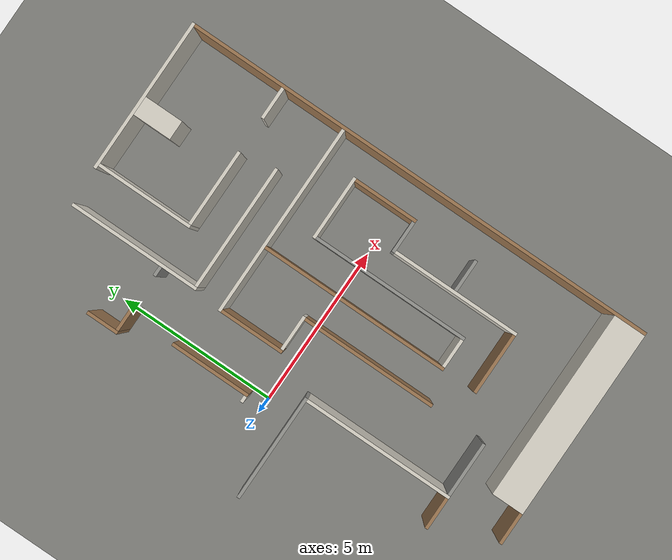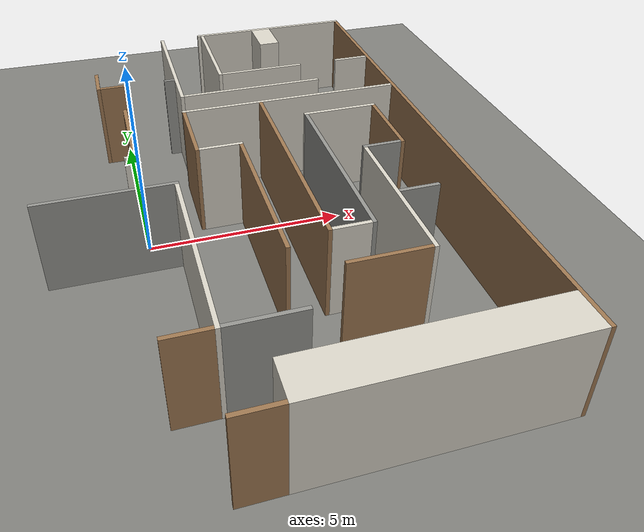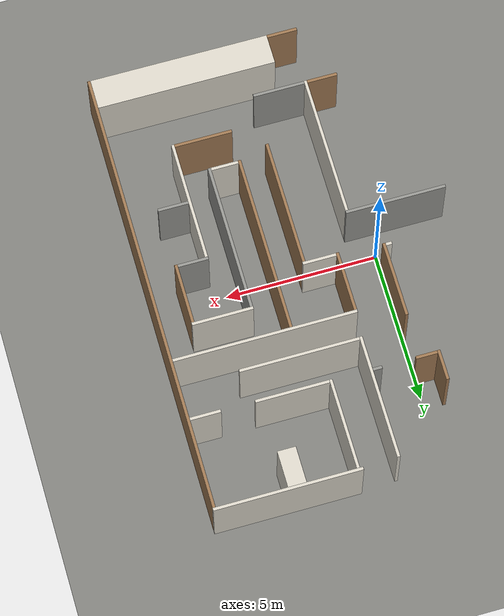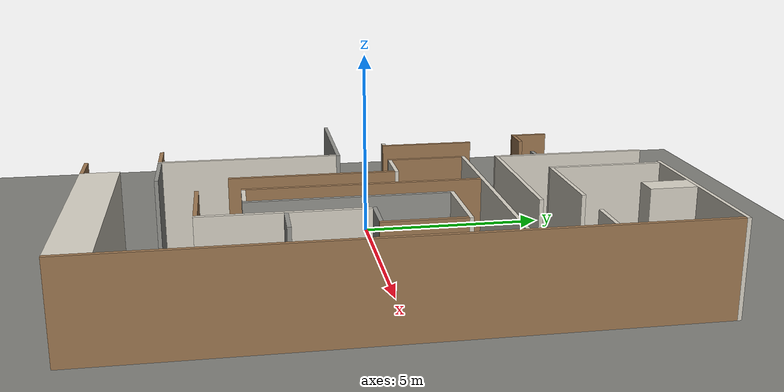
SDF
<sdf version="1.9">
 <world name="arena_world">
  <model name="ground_plane">
   <static>true</static>
   <link name="link">
    <collision name="collision">
     <geometry><plane><normal>0 0 1</normal><size>15.00 15.00</size></plane></geometry>
     <surface>
      <friction><ode><mu>0.8</mu><mu2>0.8</mu2></ode></friction>
      <contact><ode><kp>1e9</kp><kd>1.0</kd></ode></contact>
     </surface>
    </collision>
    <visual name="visual">
     <geometry><plane><normal>0 0 1</normal><size>15.00 15.00</size></plane></geometry>
     <material>
      <ambient>0.45 0.45 0.44 1</ambient>
      <diffuse>0.5 0.5 0.48 1</diffuse>
      <specular>0.15 0.15 0.15 1</specular>
      <pbr><metal><roughness>0.95</roughness><metalness>0.0</metalness></metal></pbr>
     </material>
    </visual>
   </link>
  </model>
  <model name="wall_001">
   <static>true</static>
   <pose>5.1000 7.4500 1.2200 0 0 0</pose>
   <link name="link">
    <collision name="collision">
     <geometry><box><size>4.8000 0.1000 2.4400</size></box></geometry>
     <surface>
      <friction><ode><mu>0.7</mu><mu2>0.7</mu2></ode></friction>
      <contact><ode><kp>1e9</kp><kd>1.0</kd><max_vel>0.1</max_vel><min_depth>0.001</min_depth></ode></contact>
      <bounce><restitution_coefficient>0.0</restitution_coefficient><threshold>1e6</threshold></bounce>
     </surface>
    </collision>
    <visual name="visual">
     <geometry><box><size>4.8000 0.1000 2.4400</size></box></geometry>
     <material>
      <ambient>0.82 0.80 0.75 1</ambient>
      <diffuse>0.85 0.83 0.78 1</diffuse>
      <specular>0.05 0.05 0.05 1</specular>
      <pbr><metal><roughness>0.85</roughness><metalness>0.0</metalness></metal></pbr>
     </material>
    </visual>
   </link>
  </model>
  <model name="wall_005">
   <static>true</static>
   <pose>1.5500 5.3500 1.2200 0 0 0</pose>
   <link name="link">
    <collision name="collision">
     <geometry><box><size>0.1000 4.1000 2.4400</size></box></geometry>
     <surface>
      <friction><ode><mu>0.7</mu><mu2>0.7</mu2></ode></friction>
      <contact><ode><kp>1e9</kp><kd>1.0</kd><max_vel>0.1</max_vel><min_depth>0.001</min_depth></ode></contact>
      <bounce><restitution_coefficient>0.0</restitution_coefficient><threshold>1e6</threshold></bounce>
     </surface>
    </collision>
    <visual name="visual">
     <geometry><box><size>0.1000 4.1000 2.4400</size></box></geometry>
     <material>
      <ambient>0.82 0.80 0.75 1</ambient>
      <diffuse>0.85 0.83 0.78 1</diffuse>
      <specular>0.05 0.05 0.05 1</specular>
      <pbr><metal><roughness>0.85</roughness><metalness>0.0</metalness></metal></pbr>
     </material>
    </visual>
   </link>
  </model>
  <model name="wall_006">
   <static>true</static>
   <pose>2.8500 5.9000 1.2200 0 0 0</pose>
   <link name="link">
    <collision name="collision">
     <geometry><box><size>0.1000 3.0000 2.4400</size></box></geometry>
     <surface>
      <friction><ode><mu>0.7</mu><mu2>0.7</mu2></ode></friction>
      <contact><ode><kp>1e9</kp><kd>1.0</kd><max_vel>0.1</max_vel><min_depth>0.001</min_depth></ode></contact>
      <bounce><restitution_coefficient>0.0</restitution_coefficient><threshold>1e6</threshold></bounce>
     </surface>
    </collision>
    <visual name="visual">
     <geometry><box><size>0.1000 3.0000 2.4400</size></box></geometry>
     <material>
      <ambient>0.82 0.80 0.75 1</ambient>
      <diffuse>0.85 0.83 0.78 1</diffuse>
      <specular>0.05 0.05 0.05 1</specular>
      <pbr><metal><roughness>0.85</roughness><metalness>0.0</metalness></metal></pbr>
     </material>
    </visual>
   </link>
  </model>
  <model name="wall_007">
   <static>true</static>
   <pose>4.8000 6.8000 1.2200 0 0 0</pose>
   <link name="link">
    <collision name="collision">
     <geometry><box><size>0.6000 1.2000 2.4400</size></box></geometry>
     <surface>
      <friction><ode><mu>0.7</mu><mu2>0.7</mu2></ode></friction>
      <contact><ode><kp>1e9</kp><kd>1.0</kd><max_vel>0.1</max_vel><min_depth>0.001</min_depth></ode></contact>
      <bounce><restitution_coefficient>0.0</restitution_coefficient><threshold>1e6</threshold></bounce>
     </surface>
    </collision>
    <visual name="visual">
     <geometry><box><size>0.6000 1.2000 2.4400</size></box></geometry>
     <material>
      <ambient>0.82 0.80 0.75 1</ambient>
      <diffuse>0.85 0.83 0.78 1</diffuse>
      <specular>0.05 0.05 0.05 1</specular>
      <pbr><metal><roughness>0.85</roughness><metalness>0.0</metalness></metal></pbr>
     </material>
    </visual>
   </link>
  </model>
  <model name="wall_008">
   <static>true</static>
   <pose>7.4500 -0.0500 1.2200 0 0 0</pose>
   <link name="link">
    <collision name="collision">
     <geometry><box><size>0.1000 14.9000 2.4400</size></box></geometry>
     <surface>
      <friction><ode><mu>0.7</mu><mu2>0.7</mu2></ode></friction>
      <contact><ode><kp>1e9</kp><kd>1.0</kd><max_vel>0.1</max_vel><min_depth>0.001</min_depth></ode></contact>
      <bounce><restitution_coefficient>0.0</restitution_coefficient><threshold>1e6</threshold></bounce>
     </surface>
    </collision>
    <visual name="visual">
     <geometry><box><size>0.1000 14.9000 2.4400</size></box></geometry>
     <material>
      <ambient>0.55 0.42 0.28 1</ambient>
      <diffuse>0.62 0.47 0.32 1</diffuse>
      <specular>0.06 0.06 0.06 1</specular>
      <pbr><metal><roughness>0.7</roughness><metalness>0.0</metalness></metal></pbr>
     </material>
    </visual>
   </link>
  </model>
  <model name="wall_012">
   <static>true</static>
   <pose>-0.6500 4.9000 1.2200 0 0 0</pose>
   <link name="link">
    <collision name="collision">
     <geometry><box><size>0.1000 1.0000 2.4400</size></box></geometry>
     <surface>
      <friction><ode><mu>0.7</mu><mu2>0.7</mu2></ode></friction>
      <contact><ode><kp>1e9</kp><kd>1.0</kd><max_vel>0.1</max_vel><min_depth>0.001</min_depth></ode></contact>
      <bounce><restitution_coefficient>0.0</restitution_coefficient><threshold>1e6</threshold></bounce>
     </surface>
    </collision>
    <visual name="visual">
     <geometry><box><size>0.1000 1.0000 2.4400</size></box></geometry>
     <material>
      <ambient>0.55 0.42 0.28 1</ambient>
      <diffuse>0.62 0.47 0.32 1</diffuse>
      <specular>0.06 0.06 0.06 1</specular>
      <pbr><metal><roughness>0.7</roughness><metalness>0.0</metalness></metal></pbr>
     </material>
    </visual>
   </link>
  </model>
  <model name="wall_014">
   <static>true</static>
   <pose>-0.2500 4.4500 1.2200 0 0 0</pose>
   <link name="link">
    <collision name="collision">
     <geometry><box><size>0.7000 0.1000 2.4400</size></box></geometry>
     <surface>
      <friction><ode><mu>0.7</mu><mu2>0.7</mu2></ode></friction>
      <contact><ode><kp>1e9</kp><kd>1.0</kd><max_vel>0.1</max_vel><min_depth>0.001</min_depth></ode></contact>
      <bounce><restitution_coefficient>0.0</restitution_coefficient><threshold>1e6</threshold></bounce>
     </surface>
    </collision>
    <visual name="visual">
     <geometry><box><size>0.7000 0.1000 2.4400</size></box></geometry>
     <material>
      <ambient>0.55 0.42 0.28 1</ambient>
      <diffuse>0.62 0.47 0.32 1</diffuse>
      <specular>0.06 0.06 0.06 1</specular>
      <pbr><metal><roughness>0.7</roughness><metalness>0.0</metalness></metal></pbr>
     </material>
    </visual>
   </link>
  </model>
  <model name="wall_015">
   <static>true</static>
   <pose>1.3500 4.4500 1.2200 0 0 0</pose>
   <link name="link">
    <collision name="collision">
     <geometry><box><size>0.3000 0.1000 2.4400</size></box></geometry>
     <surface>
      <friction><ode><mu>0.7</mu><mu2>0.7</mu2></ode></friction>
      <contact><ode><kp>1e9</kp><kd>1.0</kd><max_vel>0.1</max_vel><min_depth>0.001</min_depth></ode></contact>
      <bounce><restitution_coefficient>0.0</restitution_coefficient><threshold>1e6</threshold></bounce>
     </surface>
    </collision>
    <visual name="visual">
     <geometry><box><size>0.3000 0.1000 2.4400</size></box></geometry>
     <material>
      <ambient>0.55 0.55 0.53 1</ambient>
      <diffuse>0.58 0.58 0.56 1</diffuse>
      <specular>0.08 0.08 0.08 1</specular>
      <pbr><metal><roughness>0.9</roughness><metalness>0.0</metalness></metal></pbr>
     </material>
    </visual>
   </link>
  </model>
  <model name="wall_016">
   <static>true</static>
   <pose>4.1000 4.4500 1.2200 0 0 0</pose>
   <link name="link">
    <collision name="collision">
     <geometry><box><size>2.4000 0.1000 2.4400</size></box></geometry>
     <surface>
      <friction><ode><mu>0.7</mu><mu2>0.7</mu2></ode></friction>
      <contact><ode><kp>1e9</kp><kd>1.0</kd><max_vel>0.1</max_vel><min_depth>0.001</min_depth></ode></contact>
      <bounce><restitution_coefficient>0.0</restitution_coefficient><threshold>1e6</threshold></bounce>
     </surface>
    </collision>
    <visual name="visual">
     <geometry><box><size>2.4000 0.1000 2.4400</size></box></geometry>
     <material>
      <ambient>0.82 0.80 0.75 1</ambient>
      <diffuse>0.85 0.83 0.78 1</diffuse>
      <specular>0.05 0.05 0.05 1</specular>
      <pbr><metal><roughness>0.85</roughness><metalness>0.0</metalness></metal></pbr>
     </material>
    </visual>
   </link>
  </model>
  <model name="wall_017">
   <static>true</static>
   <pose>6.9000 4.4500 1.2200 0 0 0</pose>
   <link name="link">
    <collision name="collision">
     <geometry><box><size>1.0000 0.1000 2.4400</size></box></geometry>
     <surface>
      <friction><ode><mu>0.7</mu><mu2>0.7</mu2></ode></friction>
      <contact><ode><kp>1e9</kp><kd>1.0</kd><max_vel>0.1</max_vel><min_depth>0.001</min_depth></ode></contact>
      <bounce><restitution_coefficient>0.0</restitution_coefficient><threshold>1e6</threshold></bounce>
     </surface>
    </collision>
    <visual name="visual">
     <geometry><box><size>1.0000 0.1000 2.4400</size></box></geometry>
     <material>
      <ambient>0.82 0.80 0.75 1</ambient>
      <diffuse>0.85 0.83 0.78 1</diffuse>
      <specular>0.05 0.05 0.05 1</specular>
      <pbr><metal><roughness>0.85</roughness><metalness>0.0</metalness></metal></pbr>
     </material>
    </visual>
   </link>
  </model>
  <model name="wall_019">
   <static>true</static>
   <pose>3.5500 3.3500 1.2200 0 0 0</pose>
   <link name="link">
    <collision name="collision">
     <geometry><box><size>3.9000 0.1000 2.4400</size></box></geometry>
     <surface>
      <friction><ode><mu>0.7</mu><mu2>0.7</mu2></ode></friction>
      <contact><ode><kp>1e9</kp><kd>1.0</kd><max_vel>0.1</max_vel><min_depth>0.001</min_depth></ode></contact>
      <bounce><restitution_coefficient>0.0</restitution_coefficient><threshold>1e6</threshold></bounce>
     </surface>
    </collision>
    <visual name="visual">
     <geometry><box><size>3.9000 0.1000 2.4400</size></box></geometry>
     <material>
      <ambient>0.82 0.80 0.75 1</ambient>
      <diffuse>0.85 0.83 0.78 1</diffuse>
      <specular>0.05 0.05 0.05 1</specular>
      <pbr><metal><roughness>0.85</roughness><metalness>0.0</metalness></metal></pbr>
     </material>
    </visual>
   </link>
  </model>
  <model name="wall_022">
   <static>true</static>
   <pose>-0.0500 1.7500 1.2200 0 0 0</pose>
   <link name="link">
    <collision name="collision">
     <geometry><box><size>0.1000 2.5000 2.4400</size></box></geometry>
     <surface>
      <friction><ode><mu>0.7</mu><mu2>0.7</mu2></ode></friction>
      <contact><ode><kp>1e9</kp><kd>1.0</kd><max_vel>0.1</max_vel><min_depth>0.001</min_depth></ode></contact>
      <bounce><restitution_coefficient>0.0</restitution_coefficient><threshold>1e6</threshold></bounce>
     </surface>
    </collision>
    <visual name="visual">
     <geometry><box><size>0.1000 2.5000 2.4400</size></box></geometry>
     <material>
      <ambient>0.55 0.42 0.28 1</ambient>
      <diffuse>0.62 0.47 0.32 1</diffuse>
      <specular>0.06 0.06 0.06 1</specular>
      <pbr><metal><roughness>0.7</roughness><metalness>0.0</metalness></metal></pbr>
     </material>
    </visual>
   </link>
  </model>
  <model name="wall_023">
   <static>true</static>
   <pose>4.4000 2.4500 1.2200 0 0 0</pose>
   <link name="link">
    <collision name="collision">
     <geometry><box><size>6.0000 0.1000 2.4400</size></box></geometry>
     <surface>
      <friction><ode><mu>0.7</mu><mu2>0.7</mu2></ode></friction>
      <contact><ode><kp>1e9</kp><kd>1.0</kd><max_vel>0.1</max_vel><min_depth>0.001</min_depth></ode></contact>
      <bounce><restitution_coefficient>0.0</restitution_coefficient><threshold>1e6</threshold></bounce>
     </surface>
    </collision>
    <visual name="visual">
     <geometry><box><size>6.0000 0.1000 2.4400</size></box></geometry>
     <material>
      <ambient>0.82 0.80 0.75 1</ambient>
      <diffuse>0.85 0.83 0.78 1</diffuse>
      <specular>0.05 0.05 0.05 1</specular>
      <pbr><metal><roughness>0.85</roughness><metalness>0.0</metalness></metal></pbr>
     </material>
    </visual>
   </link>
  </model>
  <model name="wall_026">
   <static>true</static>
   <pose>1.4500 1.4000 1.2200 0 0 0</pose>
   <link name="link">
    <collision name="collision">
     <geometry><box><size>0.1000 2.0000 2.4400</size></box></geometry>
     <surface>
      <friction><ode><mu>0.7</mu><mu2>0.7</mu2></ode></friction>
      <contact><ode><kp>1e9</kp><kd>1.0</kd><max_vel>0.1</max_vel><min_depth>0.001</min_depth></ode></contact>
      <bounce><restitution_coefficient>0.0</restitution_coefficient><threshold>1e6</threshold></bounce>
     </surface>
    </collision>
    <visual name="visual">
     <geometry><box><size>0.1000 2.0000 2.4400</size></box></geometry>
     <material>
      <ambient>0.55 0.42 0.28 1</ambient>
      <diffuse>0.62 0.47 0.32 1</diffuse>
      <specular>0.06 0.06 0.06 1</specular>
      <pbr><metal><roughness>0.7</roughness><metalness>0.0</metalness></metal></pbr>
     </material>
    </visual>
   </link>
  </model>
  <model name="wall_027">
   <static>true</static>
   <pose>3.5500 -0.5500 1.2200 0 0 0</pose>
   <link name="link">
    <collision name="collision">
     <geometry><box><size>0.1000 5.9000 2.4400</size></box></geometry>
     <surface>
      <friction><ode><mu>0.7</mu><mu2>0.7</mu2></ode></friction>
      <contact><ode><kp>1e9</kp><kd>1.0</kd><max_vel>0.1</max_vel><min_depth>0.001</min_depth></ode></contact>
      <bounce><restitution_coefficient>0.0</restitution_coefficient><threshold>1e6</threshold></bounce>
     </surface>
    </collision>
    <visual name="visual">
     <geometry><box><size>0.1000 5.9000 2.4400</size></box></geometry>
     <material>
      <ambient>0.55 0.42 0.28 1</ambient>
      <diffuse>0.62 0.47 0.32 1</diffuse>
      <specular>0.06 0.06 0.06 1</specular>
      <pbr><metal><roughness>0.7</roughness><metalness>0.0</metalness></metal></pbr>
     </material>
    </visual>
   </link>
  </model>
  <model name="wall_031">
   <static>true</static>
   <pose>5.5000 1.4500 1.2200 0 0 0</pose>
   <link name="link">
    <collision name="collision">
     <geometry><box><size>2.0000 0.1000 2.4400</size></box></geometry>
     <surface>
      <friction><ode><mu>0.7</mu><mu2>0.7</mu2></ode></friction>
      <contact><ode><kp>1e9</kp><kd>1.0</kd><max_vel>0.1</max_vel><min_depth>0.001</min_depth></ode></contact>
      <bounce><restitution_coefficient>0.0</restitution_coefficient><threshold>1e6</threshold></bounce>
     </surface>
    </collision>
    <visual name="visual">
     <geometry><box><size>2.0000 0.1000 2.4400</size></box></geometry>
     <material>
      <ambient>0.82 0.80 0.75 1</ambient>
      <diffuse>0.85 0.83 0.78 1</diffuse>
      <specular>0.05 0.05 0.05 1</specular>
      <pbr><metal><roughness>0.85</roughness><metalness>0.0</metalness></metal></pbr>
     </material>
    </visual>
   </link>
  </model>
  <model name="wall_032">
   <static>true</static>
   <pose>4.5500 -1.0500 1.2200 0 0 0</pose>
   <link name="link">
    <collision name="collision">
     <geometry><box><size>0.1000 4.9000 2.4400</size></box></geometry>
     <surface>
      <friction><ode><mu>0.7</mu><mu2>0.7</mu2></ode></friction>
      <contact><ode><kp>1e9</kp><kd>1.0</kd><max_vel>0.1</max_vel><min_depth>0.001</min_depth></ode></contact>
      <bounce><restitution_coefficient>0.0</restitution_coefficient><threshold>1e6</threshold></bounce>
     </surface>
    </collision>
    <visual name="visual">
     <geometry><box><size>0.1000 4.9000 2.4400</size></box></geometry>
     <material>
      <ambient>0.55 0.55 0.53 1</ambient>
      <diffuse>0.58 0.58 0.56 1</diffuse>
      <specular>0.08 0.08 0.08 1</specular>
      <pbr><metal><roughness>0.9</roughness><metalness>0.0</metalness></metal></pbr>
     </material>
    </visual>
   </link>
  </model>
  <model name="wall_033">
   <static>true</static>
   <pose>6.4500 0.4000 1.2200 0 0 0</pose>
   <link name="link">
    <collision name="collision">
     <geometry><box><size>0.1000 2.0000 2.4400</size></box></geometry>
     <surface>
      <friction><ode><mu>0.7</mu><mu2>0.7</mu2></ode></friction>
      <contact><ode><kp>1e9</kp><kd>1.0</kd><max_vel>0.1</max_vel><min_depth>0.001</min_depth></ode></contact>
      <bounce><restitution_coefficient>0.0</restitution_coefficient><threshold>1e6</threshold></bounce>
     </surface>
    </collision>
    <visual name="visual">
     <geometry><box><size>0.1000 2.0000 2.4400</size></box></geometry>
     <material>
      <ambient>0.55 0.42 0.28 1</ambient>
      <diffuse>0.62 0.47 0.32 1</diffuse>
      <specular>0.06 0.06 0.06 1</specular>
      <pbr><metal><roughness>0.7</roughness><metalness>0.0</metalness></metal></pbr>
     </material>
    </visual>
   </link>
  </model>
  <model name="wall_035">
   <static>true</static>
   <pose>-0.2000 0.5500 1.2200 0 0 0</pose>
   <link name="link">
    <collision name="collision">
     <geometry><box><size>0.2000 0.1000 2.4400</size></box></geometry>
     <surface>
      <friction><ode><mu>0.7</mu><mu2>0.7</mu2></ode></friction>
      <contact><ode><kp>1e9</kp><kd>1.0</kd><max_vel>0.1</max_vel><min_depth>0.001</min_depth></ode></contact>
      <bounce><restitution_coefficient>0.0</restitution_coefficient><threshold>1e6</threshold></bounce>
     </surface>
    </collision>
    <visual name="visual">
     <geometry><box><size>0.2000 0.1000 2.4400</size></box></geometry>
     <material>
      <ambient>0.82 0.80 0.75 1</ambient>
      <diffuse>0.85 0.83 0.78 1</diffuse>
      <specular>0.05 0.05 0.05 1</specular>
      <pbr><metal><roughness>0.85</roughness><metalness>0.0</metalness></metal></pbr>
     </material>
    </visual>
   </link>
  </model>
  <model name="wall_036">
   <static>true</static>
   <pose>2.0500 0.4500 1.2200 0 0 0</pose>
   <link name="link">
    <collision name="collision">
     <geometry><box><size>1.1000 0.1000 2.4400</size></box></geometry>
     <surface>
      <friction><ode><mu>0.7</mu><mu2>0.7</mu2></ode></friction>
      <contact><ode><kp>1e9</kp><kd>1.0</kd><max_vel>0.1</max_vel><min_depth>0.001</min_depth></ode></contact>
      <bounce><restitution_coefficient>0.0</restitution_coefficient><threshold>1e6</threshold></bounce>
     </surface>
    </collision>
    <visual name="visual">
     <geometry><box><size>1.1000 0.1000 2.4400</size></box></geometry>
     <material>
      <ambient>0.82 0.80 0.75 1</ambient>
      <diffuse>0.85 0.83 0.78 1</diffuse>
      <specular>0.05 0.05 0.05 1</specular>
      <pbr><metal><roughness>0.85</roughness><metalness>0.0</metalness></metal></pbr>
     </material>
    </visual>
   </link>
  </model>
  <model name="wall_037">
   <static>true</static>
   <pose>2.5500 -1.7000 1.2200 0 0 0</pose>
   <link name="link">
    <collision name="collision">
     <geometry><box><size>0.1000 4.2000 2.4400</size></box></geometry>
     <surface>
      <friction><ode><mu>0.7</mu><mu2>0.7</mu2></ode></friction>
      <contact><ode><kp>1e9</kp><kd>1.0</kd><max_vel>0.1</max_vel><min_depth>0.001</min_depth></ode></contact>
      <bounce><restitution_coefficient>0.0</restitution_coefficient><threshold>1e6</threshold></bounce>
     </surface>
    </collision>
    <visual name="visual">
     <geometry><box><size>0.1000 4.2000 2.4400</size></box></geometry>
     <material>
      <ambient>0.55 0.42 0.28 1</ambient>
      <diffuse>0.62 0.47 0.32 1</diffuse>
      <specular>0.06 0.06 0.06 1</specular>
      <pbr><metal><roughness>0.7</roughness><metalness>0.0</metalness></metal></pbr>
     </material>
    </visual>
   </link>
  </model>
  <model name="wall_040">
   <static>true</static>
   <pose>5.9000 -0.5500 1.2200 0 0 0</pose>
   <link name="link">
    <collision name="collision">
     <geometry><box><size>1.0000 0.1000 2.4400</size></box></geometry>
     <surface>
      <friction><ode><mu>0.7</mu><mu2>0.7</mu2></ode></friction>
      <contact><ode><kp>1e9</kp><kd>1.0</kd><max_vel>0.1</max_vel><min_depth>0.001</min_depth></ode></contact>
      <bounce><restitution_coefficient>0.0</restitution_coefficient><threshold>1e6</threshold></bounce>
     </surface>
    </collision>
    <visual name="visual">
     <geometry><box><size>1.0000 0.1000 2.4400</size></box></geometry>
     <material>
      <ambient>0.55 0.55 0.53 1</ambient>
      <diffuse>0.58 0.58 0.56 1</diffuse>
      <specular>0.08 0.08 0.08 1</specular>
      <pbr><metal><roughness>0.9</roughness><metalness>0.0</metalness></metal></pbr>
     </material>
    </visual>
   </link>
  </model>
  <model name="wall_042">
   <static>true</static>
   <pose>5.4500 -2.6000 1.2200 0 0 0</pose>
   <link name="link">
    <collision name="collision">
     <geometry><box><size>0.1000 4.0000 2.4400</size></box></geometry>
     <surface>
      <friction><ode><mu>0.7</mu><mu2>0.7</mu2></ode></friction>
      <contact><ode><kp>1e9</kp><kd>1.0</kd><max_vel>0.1</max_vel><min_depth>0.001</min_depth></ode></contact>
      <bounce><restitution_coefficient>0.0</restitution_coefficient><threshold>1e6</threshold></bounce>
     </surface>
    </collision>
    <visual name="visual">
     <geometry><box><size>0.1000 4.0000 2.4400</size></box></geometry>
     <material>
      <ambient>0.82 0.80 0.75 1</ambient>
      <diffuse>0.85 0.83 0.78 1</diffuse>
      <specular>0.05 0.05 0.05 1</specular>
      <pbr><metal><roughness>0.85</roughness><metalness>0.0</metalness></metal></pbr>
     </material>
    </visual>
   </link>
  </model>
  <model name="wall_043">
   <static>true</static>
   <pose>-0.8500 -0.8500 1.2200 0 0 0</pose>
   <link name="link">
    <collision name="collision">
     <geometry><box><size>3.3000 0.1000 2.4400</size></box></geometry>
     <surface>
      <friction><ode><mu>0.7</mu><mu2>0.7</mu2></ode></friction>
      <contact><ode><kp>1e9</kp><kd>1.0</kd><max_vel>0.1</max_vel><min_depth>0.001</min_depth></ode></contact>
      <bounce><restitution_coefficient>0.0</restitution_coefficient><threshold>1e6</threshold></bounce>
     </surface>
    </collision>
    <visual name="visual">
     <geometry><box><size>3.3000 0.1000 2.4400</size></box></geometry>
     <material>
      <ambient>0.55 0.55 0.53 1</ambient>
      <diffuse>0.58 0.58 0.56 1</diffuse>
      <specular>0.08 0.08 0.08 1</specular>
      <pbr><metal><roughness>0.9</roughness><metalness>0.0</metalness></metal></pbr>
     </material>
    </visual>
   </link>
  </model>
  <model name="wall_045">
   <static>true</static>
   <pose>0.7500 -3.2500 1.2200 0 0 0</pose>
   <link name="link">
    <collision name="collision">
     <geometry><box><size>0.1000 4.7000 2.4400</size></box></geometry>
     <surface>
      <friction><ode><mu>0.7</mu><mu2>0.7</mu2></ode></friction>
      <contact><ode><kp>1e9</kp><kd>1.0</kd><max_vel>0.1</max_vel><min_depth>0.001</min_depth></ode></contact>
      <bounce><restitution_coefficient>0.0</restitution_coefficient><threshold>1e6</threshold></bounce>
     </surface>
    </collision>
    <visual name="visual">
     <geometry><box><size>0.1000 4.7000 2.4400</size></box></geometry>
     <material>
      <ambient>0.82 0.80 0.75 1</ambient>
      <diffuse>0.85 0.83 0.78 1</diffuse>
      <specular>0.05 0.05 0.05 1</specular>
      <pbr><metal><roughness>0.85</roughness><metalness>0.0</metalness></metal></pbr>
     </material>
    </visual>
   </link>
  </model>
  <model name="wall_046">
   <static>true</static>
   <pose>6.0000 -2.5500 1.2200 0 0 0</pose>
   <link name="link">
    <collision name="collision">
     <geometry><box><size>1.0000 0.1000 2.4400</size></box></geometry>
     <surface>
      <friction><ode><mu>0.7</mu><mu2>0.7</mu2></ode></friction>
      <contact><ode><kp>1e9</kp><kd>1.0</kd><max_vel>0.1</max_vel><min_depth>0.001</min_depth></ode></contact>
      <bounce><restitution_coefficient>0.0</restitution_coefficient><threshold>1e6</threshold></bounce>
     </surface>
    </collision>
    <visual name="visual">
     <geometry><box><size>1.0000 0.1000 2.4400</size></box></geometry>
     <material>
      <ambient>0.55 0.55 0.53 1</ambient>
      <diffuse>0.58 0.58 0.56 1</diffuse>
      <specular>0.08 0.08 0.08 1</specular>
      <pbr><metal><roughness>0.9</roughness><metalness>0.0</metalness></metal></pbr>
     </material>
    </visual>
   </link>
  </model>
  <model name="wall_047">
   <static>true</static>
   <pose>4.0500 -3.4500 1.2200 0 0 0</pose>
   <link name="link">
    <collision name="collision">
     <geometry><box><size>0.9000 0.1000 2.4400</size></box></geometry>
     <surface>
      <friction><ode><mu>0.7</mu><mu2>0.7</mu2></ode></friction>
      <contact><ode><kp>1e9</kp><kd>1.0</kd><max_vel>0.1</max_vel><min_depth>0.001</min_depth></ode></contact>
      <bounce><restitution_coefficient>0.0</restitution_coefficient><threshold>1e6</threshold></bounce>
     </surface>
    </collision>
    <visual name="visual">
     <geometry><box><size>0.9000 0.1000 2.4400</size></box></geometry>
     <material>
      <ambient>0.82 0.80 0.75 1</ambient>
      <diffuse>0.85 0.83 0.78 1</diffuse>
      <specular>0.05 0.05 0.05 1</specular>
      <pbr><metal><roughness>0.85</roughness><metalness>0.0</metalness></metal></pbr>
     </material>
    </visual>
   </link>
  </model>
  <model name="wall_050">
   <static>true</static>
   <pose>4.4500 -4.5500 1.2200 0 0 0</pose>
   <link name="link">
    <collision name="collision">
     <geometry><box><size>1.9000 0.1000 2.4400</size></box></geometry>
     <surface>
      <friction><ode><mu>0.7</mu><mu2>0.7</mu2></ode></friction>
      <contact><ode><kp>1e9</kp><kd>1.0</kd><max_vel>0.1</max_vel><min_depth>0.001</min_depth></ode></contact>
      <bounce><restitution_coefficient>0.0</restitution_coefficient><threshold>1e6</threshold></bounce>
     </surface>
    </collision>
    <visual name="visual">
     <geometry><box><size>1.9000 0.1000 2.4400</size></box></geometry>
     <material>
      <ambient>0.55 0.42 0.28 1</ambient>
      <diffuse>0.62 0.47 0.32 1</diffuse>
      <specular>0.06 0.06 0.06 1</specular>
      <pbr><metal><roughness>0.7</roughness><metalness>0.0</metalness></metal></pbr>
     </material>
    </visual>
   </link>
  </model>
  <model name="wall_053">
   <static>true</static>
   <pose>0.2000 -5.5500 1.2200 0 0 0</pose>
   <link name="link">
    <collision name="collision">
     <geometry><box><size>1.0000 0.1000 2.4400</size></box></geometry>
     <surface>
      <friction><ode><mu>0.7</mu><mu2>0.7</mu2></ode></friction>
      <contact><ode><kp>1e9</kp><kd>1.0</kd><max_vel>0.1</max_vel><min_depth>0.001</min_depth></ode></contact>
      <bounce><restitution_coefficient>0.0</restitution_coefficient><threshold>1e6</threshold></bounce>
     </surface>
    </collision>
    <visual name="visual">
     <geometry><box><size>1.0000 0.1000 2.4400</size></box></geometry>
     <material>
      <ambient>0.55 0.42 0.28 1</ambient>
      <diffuse>0.62 0.47 0.32 1</diffuse>
      <specular>0.06 0.06 0.06 1</specular>
      <pbr><metal><roughness>0.7</roughness><metalness>0.0</metalness></metal></pbr>
     </material>
    </visual>
   </link>
  </model>
  <model name="wall_054">
   <static>true</static>
   <pose>1.6500 -5.5500 1.2200 0 0 0</pose>
   <link name="link">
    <collision name="collision">
     <geometry><box><size>1.7000 0.1000 2.4400</size></box></geometry>
     <surface>
      <friction><ode><mu>0.7</mu><mu2>0.7</mu2></ode></friction>
      <contact><ode><kp>1e9</kp><kd>1.0</kd><max_vel>0.1</max_vel><min_depth>0.001</min_depth></ode></contact>
      <bounce><restitution_coefficient>0.0</restitution_coefficient><threshold>1e6</threshold></bounce>
     </surface>
    </collision>
    <visual name="visual">
     <geometry><box><size>1.7000 0.1000 2.4400</size></box></geometry>
     <material>
      <ambient>0.55 0.55 0.53 1</ambient>
      <diffuse>0.58 0.58 0.56 1</diffuse>
      <specular>0.08 0.08 0.08 1</specular>
      <pbr><metal><roughness>0.9</roughness><metalness>0.0</metalness></metal></pbr>
     </material>
    </visual>
   </link>
  </model>
  <model name="wall_058">
   <static>true</static>
   <pose>4.4500 -7.0000 1.2200 0 0 0</pose>
   <link name="link">
    <collision name="collision">
     <geometry><box><size>5.9000 1.0000 2.4400</size></box></geometry>
     <surface>
      <friction><ode><mu>0.7</mu><mu2>0.7</mu2></ode></friction>
      <contact><ode><kp>1e9</kp><kd>1.0</kd><max_vel>0.1</max_vel><min_depth>0.001</min_depth></ode></contact>
      <bounce><restitution_coefficient>0.0</restitution_coefficient><threshold>1e6</threshold></bounce>
     </surface>
    </collision>
    <visual name="visual">
     <geometry><box><size>5.9000 1.0000 2.4400</size></box></geometry>
     <material>
      <ambient>0.82 0.80 0.75 1</ambient>
      <diffuse>0.85 0.83 0.78 1</diffuse>
      <specular>0.05 0.05 0.05 1</specular>
      <pbr><metal><roughness>0.85</roughness><metalness>0.0</metalness></metal></pbr>
     </material>
    </visual>
   </link>
  </model>
  <model name="wall_062">
   <static>true</static>
   <pose>1.0000 -7.4500 1.2200 0 0 0</pose>
   <link name="link">
    <collision name="collision">
     <geometry><box><size>1.0000 0.1000 2.4400</size></box></geometry>
     <surface>
      <friction><ode><mu>0.7</mu><mu2>0.7</mu2></ode></friction>
      <contact><ode><kp>1e9</kp><kd>1.0</kd><max_vel>0.1</max_vel><min_depth>0.001</min_depth></ode></contact>
      <bounce><restitution_coefficient>0.0</restitution_coefficient><threshold>1e6</threshold></bounce>
     </surface>
    </collision>
    <visual name="visual">
     <geometry><box><size>1.0000 0.1000 2.4400</size></box></geometry>
     <material>
      <ambient>0.55 0.42 0.28 1</ambient>
      <diffuse>0.62 0.47 0.32 1</diffuse>
      <specular>0.06 0.06 0.06 1</specular>
      <pbr><metal><roughness>0.7</roughness><metalness>0.0</metalness></metal></pbr>
     </material>
    </visual>
   </link>
  </model>
 </world>
</sdf>
